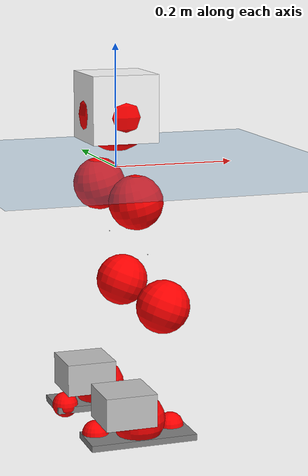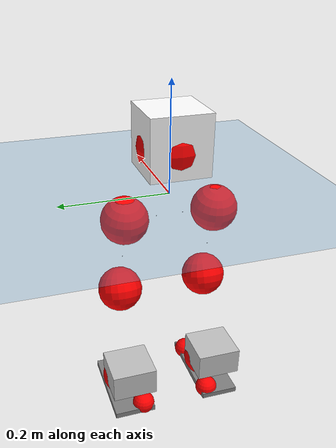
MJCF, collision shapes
<mujoco model="pi_12dof_release_v1">
  <compiler angle="radian" assetdir="assets" balanceinertia="true" inertiafromgeom="false"/>

  <option timestep="0.005" density="1.2" viscosity="2e-05"/>

  <size nkey="1"/>

  <visual>
    <quality shadowsize="8192"/>
    <map shadowclip="0.5"/>
  </visual>

  <default>
    <default class="/">
      <joint armature="0.01" damping="0.01" frictionloss="0.01"/>
      <geom contype="0" conaffinity="0" group="1" solref="-1000 -80"/>
      <site size="0.01 0.005 0.005" group="5"/>
      <general forcelimited="true" biastype="affine" gainprm="20" biasprm="0 -20 -0.5"/>
      <default class="foot">
        <geom size="0.0845 0.036 0.005" type="box" condim="6" group="4" priority="1" friction="0.9 0.2 0.2" solimp="0.015 1 0.005"/>
      </default>
      <default class="reward_collision_sphere">
        <geom group="5" rgba="1 0 0 1"/>
      </default>
    </default>
  </default>

  <asset>
    <texture type="skybox" colorspace="auto" name="//unnamed_texture_0" builtin="gradient" rgb1="0.95 0.95 0.95" rgb2="0.95 0.95 0.95" width="100" height="600"/>
    <texture type="2d" colorspace="auto" name="texplane" builtin="checker" rgb1="0.345 0.575 0.748" rgb2="0.345 0.575 0.748" markrgb="1 1 1" width="512" height="512"/>
    <material name="MatPlane" class="/" texture="texplane" texuniform="true" texrepeat="2 2" specular="0.9"/>
    <mesh name="baselink_1" class="/" file="baselink_1.STL"/>
    <mesh name="r_hip_pitch_link" class="/" file="r_hip_pitch_link.STL"/>
    <mesh name="r_hip_roll_link" class="/" file="r_hip_roll_link.STL"/>
    <mesh name="r_thigh_link" class="/" file="r_thigh_link.STL"/>
    <mesh name="r_calf_link" class="/" file="r_calf_link.STL"/>
    <mesh name="r_ankle_pitch_link" class="/" file="r_ankle_pitch_link.STL"/>
    <mesh name="r_ankle_roll_link" class="/" file="r_ankle_roll_link.STL"/>
    <mesh name="l_hip_pitch_link" class="/" file="l_hip_pitch_link.STL"/>
    <mesh name="l_hip_roll_link" class="/" file="l_hip_roll_link.STL"/>
    <mesh name="l_thigh_link" class="/" file="l_thigh_link.STL"/>
    <mesh name="l_calf_link" class="/" file="l_calf_link.STL"/>
    <mesh name="l_ankle_pitch_link" class="/" file="l_ankle_pitch_link.STL"/>
    <mesh name="l_ankle_roll_link" class="/" file="l_ankle_roll_link.STL"/>
  </asset>

  <worldbody>
    <geom name="floor" class="/" size="100 100 0.125" type="plane" group="0" material="MatPlane"/>
    <light name="toplight_shadow" class="/" pos="0 0 5" dir="0.0990148 0.0990148 -0.990148" type="directional" ambient="0.04 0.04 0.04" diffuse="0.55 0.55 0.55" specular="0.12 0.12 0.12"/>
    <light name="toplight_fill" class="/" pos="0 0 5" dir="0.0990148 0.0990148 -0.990148" type="directional" castshadow="false" ambient="0.04 0.04 0.04" diffuse="0.3 0.3 0.3" specular="0.08 0.08 0.08"/>
    <body name="trunk" pos="-0.000201874 -0.00142157 -0.000371122" quat="1 -1.80421e-05 9.23886e-06 7.26609e-05">
      <inertial pos="0.00487112 -0.001044 0.0503229" quat="0.689136 0.00817991 0.0058245 0.724562" mass="2.80491" diaginertia="0.00766934 0.0123106 0.0125964"/>
      <joint name="//unnamed_joint_0" type="free"/>
      <geom name="//unnamed_geom_1" class="/" type="mesh" density="0" rgba="1 1 1 1" mesh="baselink_1"/>
      <geom name="//unnamed_geom_2" class="/" size="0.0545919 0.0545919 0.0545919" pos="0 0 0.0998536" type="box" rgba="1 1 1 1"/>
      <geom name="//unnamed_geom_3" class="reward_collision_sphere" size="0.0600511" pos="0 0 0.0873719"/>
      <site name="imu" class="/" pos="0.00804329 0.0128957 -0.00715622" size="0.0109184"/>
      <camera name="track" class="/" pos="0 -2.1387 0" quat="0.707107 0.707107 0 0" mode="trackcom"/>
      <camera name="ego_camera" class="/" pos="0.0718499 0 0.224671" quat="-0.5 -0.5 0.5 0.5"/>
      <body name="r_hip_pitch_link" pos="0.00282994 -0.0263597 -0.0417429" quat="0.992264 3.85337e-05 -0.124147 -0.000194033">
        <inertial pos="0.0010348 -0.0597343 0.00270017" quat="-0.0190263 0.706227 -0.0278896 0.70718" mass="0.478086" diaginertia="8.76491e-05 0.000136371 0.000249005"/>
        <joint name="r_hip_pitch_joint" class="/" pos="0 0 0" axis="0.000521719 -0.999949 -0.0101158" range="-1.74307 1.19657" armature="0.0104716" damping="0.0177207" frictionloss="0.00988408"/>
        <geom name="//unnamed_geom_4" class="/" type="mesh" density="0" rgba="0.75294 0.75294 0.75294 1" mesh="r_hip_pitch_link"/>
        <geom name="//unnamed_geom_5" class="/" size="0.000545919 0.000545919 0.000545919" type="box" rgba="0.75294 0.75294 0.75294 1"/>
        <body name="r_hip_roll_link" pos="0.00124543 -0.0622 -0.0010267" quat="1 -0.0004831 -0.000352694 -0.000726456">
          <inertial pos="0.00037336 0.00270483 -0.0749384" quat="0.707343 -0.0773586 -0.0815301 0.697878" mass="0.505965" diaginertia="0.000265851 0.000385919 0.000373469"/>
          <joint name="r_hip_roll_joint" class="/" pos="0 0 0" axis="-0.999934 0.00766927 -0.00854639" range="-0.10596 0.517166" armature="0.00965619" damping="0.0327252" frictionloss="0.0113219"/>
          <geom name="//unnamed_geom_6" class="/" type="mesh" density="0" rgba="0.75294 0.75294 0.75294 1" mesh="r_hip_roll_link"/>
          <geom name="//unnamed_geom_7" class="/" size="0.000545919 0.000545919 0.000545919" type="box" rgba="0.75294 0.75294 0.75294 1"/>
          <geom name="//unnamed_geom_8" class="reward_collision_sphere" size="0.0436736"/>
          <body name="r_thigh_link" pos="-0.00200649 0.00031252 -0.0879032" quat="0.999999 0.000513854 -8.64116e-05 -0.00119758">
            <inertial pos="0.00240626 0.00115618 -0.0580981" quat="0.736906 0.675994 0.000557578 -0.000997134" mass="0.146499" diaginertia="9.90151e-05 0.000131545 0.000177537"/>
            <joint name="r_thigh_joint" class="/" pos="0 0 0" axis="-0.00266128 -0.0046089 -0.999986" range="-0.340841 0.601306" armature="0.00935679" damping="0.00241701" frictionloss="0.0106787"/>
            <geom name="//unnamed_geom_9" class="/" type="mesh" density="0" rgba="0.75294 0.75294 0.75294 1" mesh="r_thigh_link"/>
            <geom name="//unnamed_geom_10" class="/" size="0.000545919 0.000545919 0.000545919" type="box" rgba="0.75294 0.75294 0.75294 1"/>
            <body name="r_calf_link" pos="0.00217676 -0.00510383 -0.0898285" quat="0.947697 -1.0749e-05 0.319172 -0.000139283">
              <inertial pos="-0.00325714 0.000776485 -0.0854255" quat="0.999974 -0.000599557 0.00267583 0.00665729" mass="1.04696" diaginertia="0.00274118 0.00497778 0.000533703"/>
              <joint name="r_calf_joint" class="/" pos="0 0 0" axis="0.0117435 -0.999931 0.000463231" range="-1.6862 0.701615" armature="0.00988141" damping="0.0135479" frictionloss="0.0124112"/>
              <geom name="//unnamed_geom_11" class="/" type="mesh" density="0" rgba="0.75294 0.75294 0.75294 1" mesh="r_calf_link"/>
              <geom name="//unnamed_geom_12" class="/" size="0.000545919 0.000545919 0.000545919" type="box" rgba="0.75294 0.75294 0.75294 1"/>
              <geom name="//unnamed_geom_13" class="reward_collision_sphere" size="0.0436736"/>
              <body name="r_ankle_pitch_link" pos="3.3746e-05 -0.00141343 -0.171847" quat="0.979817 0.000241724 -0.199898 0.000287792">
                <inertial pos="0.00186278 0.00519974 0.000332796" quat="0.00137708 0.712405 -0.0118427 0.701667" mass="0.237144" diaginertia="0.000249469 0.000312679 0.000354811"/>
                <joint name="r_ankle_pitch_joint" class="/" pos="0 0 0" axis="-0.00219371 -0.999997 -0.00129018" stiffness="0.00031729" range="-1.24145 0.493594" armature="0.0104801" damping="0.0193311" frictionloss="0.00947513"/>
                <geom name="//unnamed_geom_14" class="/" type="mesh" density="0" rgba="0.75294 0.75294 0.75294 1" mesh="r_ankle_pitch_link"/>
                <geom name="//unnamed_geom_15" class="/" size="0.0425817 0.0436736 0.027296" type="box" rgba="0.75294 0.75294 0.75294 1"/>
                <body name="r_ankle_roll_link" pos="0.0739246 0.00426042 -0.00185633" quat="1 6.81272e-05 -0.000139838 -0.000218282">
                  <inertial pos="-0.0198286 -0.000176575 -0.0160878" quat="0.557168 0.44023 0.427397 0.559548" mass="0.670949" diaginertia="0.000931075 0.00144934 0.000883363"/>
                  <joint name="r_ankle_roll_joint" class="/" pos="0 0 0" axis="-0.999996 -0.000385921 -0.00269378" stiffness="0.00940785" range="-0.12982 0.141981" armature="0.0108914" damping="0" frictionloss="0.00943806"/>
                  <geom name="//unnamed_geom_16" class="/" type="mesh" density="0" rgba="0.75294 0.75294 0.75294 1" mesh="r_ankle_roll_link"/>
                  <geom name="//unnamed_geom_17" class="/" type="mesh" rgba="0.75294 0.75294 0.75294 1" mesh="r_ankle_roll_link"/>
                  <geom name="right_foot" class="foot" size="0.0886325 0.0366628 0.00522391" pos="-0.0488579 0 -0.0549195"/>
                  <geom name="//unnamed_geom_19" class="reward_collision_sphere" size="0.0436736" pos="-0.0478999 0 -0.0249634"/>
                  <geom name="//unnamed_geom_20" class="reward_collision_sphere" size="0.0218368" pos="0.01437 0.021387 -0.0499268"/>
                  <geom name="//unnamed_geom_21" class="reward_collision_sphere" size="0.0218368" pos="-0.11496 0.021387 -0.0499268"/>
                  <site name="right_foot" class="foot" pos="-0.0488579 0 -0.0549195" size="0.0109184"/>
                </body>
              </body>
            </body>
          </body>
        </body>
      </body>
      <body name="l_hip_pitch_link" pos="0.000320572 0.0251198 -0.0404" quat="0.992243 -0.000687454 -0.124306 0.00102726">
        <inertial pos="0.000333705 0.0571361 0.00256089" quat="-0.0297766 0.700846 0.0291233 0.712096" mass="0.539562" diaginertia="0.000107749 0.000151977 0.000315737"/>
        <joint name="l_hip_pitch_joint" class="/" pos="0 0 0" axis="0.000997724 0.999999 -7.54816e-05" range="-1.24107 1.75936" armature="0.0112933" damping="0.0058435" frictionloss="0.0120831"/>
        <geom name="//unnamed_geom_22" class="/" type="mesh" density="0" rgba="0.75294 0.75294 0.75294 1" mesh="l_hip_pitch_link"/>
        <geom name="//unnamed_geom_23" class="/" size="0.000545919 0.000545919 0.000545919" type="box" rgba="0.75294 0.75294 0.75294 1"/>
        <body name="l_hip_roll_link" pos="-0.00301556 0.0602465 0.00144447" quat="1 7.43066e-05 -9.86912e-05 0.000487652">
          <inertial pos="-0.00187916 0.000282537 -0.0753069" quat="0.708174 -0.073069 -0.0782016 0.697879" mass="0.511505" diaginertia="0.000270719 0.000414839 0.000404059"/>
          <joint name="l_hip_roll_joint" class="/" pos="0 0 0" axis="-0.999982 0.00500446 0.00332921" range="-0.491601 0.111035" armature="0.011495" damping="0.00740469" frictionloss="0.0123708"/>
          <geom name="//unnamed_geom_24" class="/" type="mesh" density="0" rgba="0.75294 0.75294 0.75294 1" mesh="l_hip_roll_link"/>
          <geom name="//unnamed_geom_25" class="/" size="0.000545919 0.000545919 0.000545919" type="box" rgba="0.75294 0.75294 0.75294 1"/>
          <geom name="//unnamed_geom_26" class="reward_collision_sphere" size="0.0436736"/>
          <body name="l_thigh_link" pos="-0.00312532 0.00144887 -0.0850403" quat="1 0.000399343 0.000424808 0.00043913">
            <inertial pos="0.000962999 -0.00172764 -0.0611411" quat="0.675305 0.737526 0.000202612 -0.00438951" mass="0.155769" diaginertia="0.000104576 0.000137905 0.000181605"/>
            <joint name="l_thigh_joint" class="/" pos="0 0 0" axis="-0.0012952 0.00135145 -0.999998" stiffness="0.00120844" range="-0.592377 0.305429" armature="0.00964604" damping="0.00822635" frictionloss="0.0106756"/>
            <geom name="//unnamed_geom_27" class="/" type="mesh" density="0" rgba="0.75294 0.75294 0.75294 1" mesh="l_thigh_link"/>
            <geom name="//unnamed_geom_28" class="/" size="0.000545919 0.000545919 0.000545919" type="box" rgba="0.75294 0.75294 0.75294 1"/>
            <body name="l_calf_link" pos="0.000290403 0.000400147 -0.0897567" quat="0.947606 -0.000276736 0.319441 2.9973e-05">
              <inertial pos="0.00261629 0.00462495 -0.0892977" quat="0.999971 0.00288218 0.00680311 -0.00162307" mass="1.08011" diaginertia="0.00299029 0.00521795 0.000544261"/>
              <joint name="l_calf_joint" class="/" pos="0 0 0" axis="0.00227814 0.999907 0.013413" range="-0.616039 1.59906" armature="0.0121449" damping="0.0182405" frictionloss="0.0123271"/>
              <geom name="//unnamed_geom_29" class="/" type="mesh" density="0" rgba="0.75294 0.75294 0.75294 1" mesh="l_calf_link"/>
              <geom name="//unnamed_geom_30" class="/" size="0.000545919 0.000545919 0.000545919" type="box" rgba="0.75294 0.75294 0.75294 1"/>
              <geom name="//unnamed_geom_31" class="reward_collision_sphere" size="0.0436736"/>
              <body name="l_ankle_pitch_link" pos="0.000705315 0.00247377 -0.17338" quat="0.980067 4.09504e-05 -0.198668 -7.97695e-06">
                <inertial pos="0.00444396 -0.00116275 0.00260439" quat="0.00353031 0.70845 -0.00282235 0.705747" mass="0.219329" diaginertia="0.000239223 0.000296909 0.000351895"/>
                <joint name="l_ankle_pitch_joint" class="/" pos="0 0 0" axis="-0.002446 0.999981 0.00568086" range="-0.530311 1.34975" armature="0.0108536" damping="0.0171456" frictionloss="0.0109364"/>
                <geom name="//unnamed_geom_32" class="/" type="mesh" density="0" rgba="0.75294 0.75294 0.75294 1" mesh="l_ankle_pitch_link"/>
                <geom name="//unnamed_geom_33" class="/" size="0.0425817 0.0436736 0.027296" type="box" rgba="0.75294 0.75294 0.75294 1"/>
                <body name="l_ankle_roll_link" pos="0.0742068 0.00447613 0.000614574" quat="0.999999 -0.000715909 0.00101161 -0.000582683">
                  <inertial pos="-0.0245731 -0.000675293 -0.0205442" quat="0.570798 0.427175 0.428267 0.555247" mass="0.676772" diaginertia="0.000906108 0.00139132 0.000867268"/>
                  <joint name="l_ankle_roll_joint" class="/" pos="0 0 0" axis="-0.999978 0.00662043 0.00061567" range="-0.175767 0.120655" armature="0.0107347" damping="0.00704165" frictionloss="0.0105471"/>
                  <geom name="//unnamed_geom_34" class="/" type="mesh" density="0" rgba="0.75294 0.75294 0.75294 1" mesh="l_ankle_roll_link"/>
                  <geom name="//unnamed_geom_35" class="/" type="mesh" rgba="0.75294 0.75294 0.75294 1" mesh="l_ankle_roll_link"/>
                  <geom name="left_foot" class="foot" size="0.0830509 0.0399712 0.0054712" pos="-0.0488579 0 -0.0549195"/>
                  <geom name="//unnamed_geom_37" class="reward_collision_sphere" size="0.0436736" pos="-0.0478999 0 -0.0249634"/>
                  <geom name="//unnamed_geom_38" class="reward_collision_sphere" size="0.0218368" pos="0.01437 -0.021387 -0.0499268"/>
                  <geom name="//unnamed_geom_39" class="reward_collision_sphere" size="0.0218368" pos="-0.11496 -0.021387 -0.0499268"/>
                  <site name="left_foot" class="foot" pos="-0.0488579 0 -0.0549195" size="0.0109184"/>
                </body>
              </body>
            </body>
          </body>
        </body>
      </body>
    </body>
  </worldbody>

  <contact>
    <pair class="/" geom1="floor" geom2="right_foot" name="//unnamed_contact_1"/>
    <pair class="/" geom1="floor" geom2="left_foot" name="//unnamed_contact_0"/>
  </contact>

  <actuator>
    <general name="r_hip_pitch_joint" class="/" joint="r_hip_pitch_joint" forcerange="-21.2275 21.2275" gainprm="20.5122" biasprm="0 -20.5122 -0.523829"/>
    <general name="r_hip_roll_joint" class="/" joint="r_hip_roll_joint" forcerange="-23.3057 23.3057" gainprm="20.5122" biasprm="0 -20.5122 -0.523829"/>
    <general name="r_thigh_joint" class="/" joint="r_thigh_joint" forcerange="-24.7732 24.7732" gainprm="20.5122" biasprm="0 -20.5122 -0.523829"/>
    <general name="r_calf_joint" class="/" joint="r_calf_joint" forcerange="-22.6075 22.6075" gainprm="20.5122" biasprm="0 -20.5122 -0.523829"/>
    <general name="r_ankle_pitch_joint" class="/" joint="r_ankle_pitch_joint" forcerange="-22.6189 22.6189" gainprm="20.5122" biasprm="0 -20.5122 -0.523829"/>
    <general name="r_ankle_roll_joint" class="/" joint="r_ankle_roll_joint" forcerange="-22.5781 22.5781" gainprm="20.5122" biasprm="0 -20.5122 -0.523829"/>
    <general name="l_hip_pitch_joint" class="/" joint="l_hip_pitch_joint" forcerange="-21.4654 21.4654" gainprm="20.5122" biasprm="0 -20.5122 -0.523829"/>
    <general name="l_hip_roll_joint" class="/" joint="l_hip_roll_joint" forcerange="-21.1411 21.1411" gainprm="20.5122" biasprm="0 -20.5122 -0.523829"/>
    <general name="l_thigh_joint" class="/" joint="l_thigh_joint" forcerange="-20.8531 20.8531" gainprm="20.5122" biasprm="0 -20.5122 -0.523829"/>
    <general name="l_calf_joint" class="/" joint="l_calf_joint" forcerange="-22.5756 22.5756" gainprm="20.5122" biasprm="0 -20.5122 -0.523829"/>
    <general name="l_ankle_pitch_joint" class="/" joint="l_ankle_pitch_joint" forcerange="-22.5671 22.5671" gainprm="20.5122" biasprm="0 -20.5122 -0.523829"/>
    <general name="l_ankle_roll_joint" class="/" joint="l_ankle_roll_joint" forcerange="-24.8066 24.8066" gainprm="20.5122" biasprm="0 -20.5122 -0.523829"/>
  </actuator>

  <sensor>
    <gyro site="imu" name="imu_angular_velocity"/>
    <velocimeter site="imu" name="imu_linear_velocity"/>
    <framelinvel objtype="site" objname="left_foot" name="left_foot_global_linear_velocity"/>
    <framelinvel objtype="site" objname="right_foot" name="right_foot_global_linear_velocity"/>
  </sensor>

  <keyframe>
    <key name="home" qpos="0 0 0.291 1 0 0 0 0.4 0 0 -0.8 0.4 0 -0.4 0 0 0.8 -0.4 0"/>
  </keyframe>
</mujoco>
